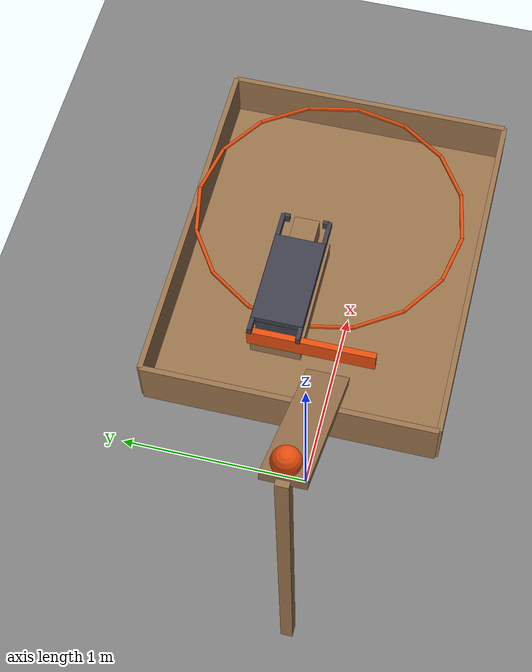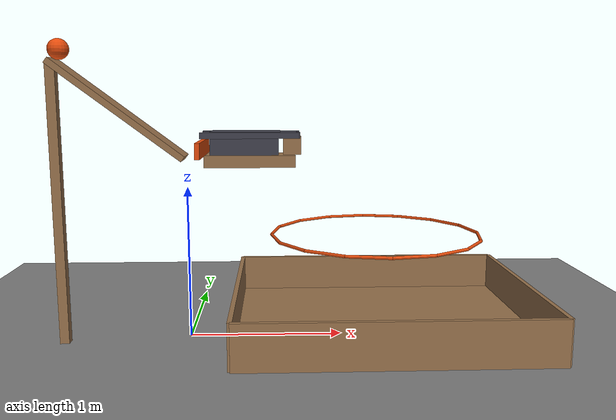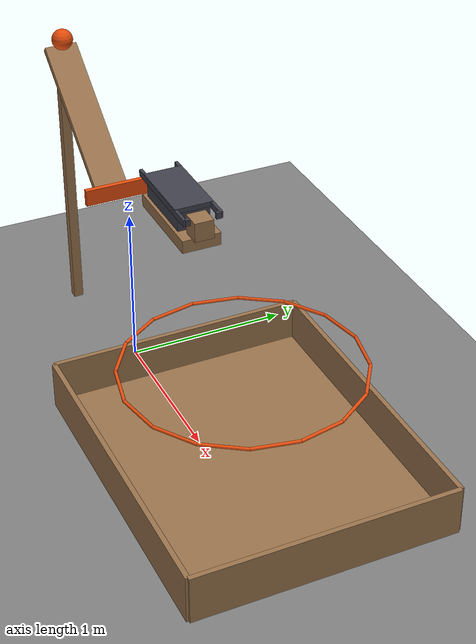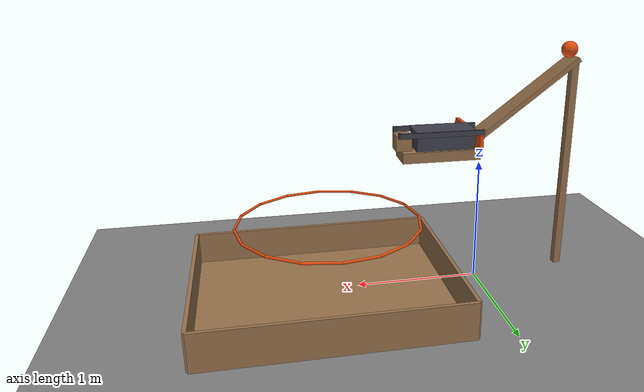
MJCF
<mujoco model="ramp_paddle_slider_drop">
  <compiler angle="radian"/>
  <option timestep="0.002"/>
  <worldbody>
    <geom name="floor" type="plane" size="6 6 0.1" friction="0.8 0.005 0.002"/>
    <body name="ramp">
      <geom name="ramp_deck" type="box" pos="-0.4 -0.1 1.5" size="0.5 0.1 0.02" euler="0 0.643501 0" friction="0.7 0.001 0.0005" rgba="0.6 0.45 0.3 1"/>
      <geom name="ramp_leg" type="box" pos="-0.8 -0.1 0.9" size="0.03 0.03 0.9" friction="0.7 0.001 0.0005" rgba="0.6 0.45 0.3 1"/>
    </body>
    <body name="ball" pos="-0.749 -0.1 1.868">
      <freejoint/>
      <geom name="ball" type="sphere" pos="0 0 0" size="0.065" mass="0.65" condim="6" friction="0.7 0.001 0.0005" solref="0.01 1" rgba="0.9 0.3 0.05 1"/>
    </body>
    <body name="ledge">
      <geom name="ledge" type="box" pos="0.4 0.17 1.16" size="0.3 0.12 0.04" friction="0.08 0.001 0.001" rgba="0.6 0.45 0.3 1"/>
    </body>
    <body name="paddle" pos="0.1 -0.3 1.255">
      <joint name="paddle_hinge" type="hinge" pos="0 0 0" axis="0 0 1" limited="true" range="-1.22173 0" damping="0.03"/>
      <geom name="paddle" type="box" pos="0 0.3 0" size="0.015 0.3 0.05" mass="0.18" friction="0.15 0.005 0.0001" solref="0.01 1" rgba="0.9 0.3 0.05 1"/>
    </body>
    <body name="slider right guide">
      <geom name="slider right guide" type="box" pos="0.4 0.058 1.33" size="0.325 0.01 0.02" friction="0.05 0.005 0.0001" rgba="0.25 0.25 0.3 1"/>
    </body>
    <body name="slider left guide">
      <geom name="slider left guide" type="box" pos="0.4 0.282 1.33" size="0.325 0.01 0.02" friction="0.05 0.005 0.0001" rgba="0.25 0.25 0.3 1"/>
    </body>
    <body name="slider keeper">
      <geom name="slider keeper" type="box" pos="0.37 0.17 1.338" size="0.23 0.12 0.015" friction="0.05 0.005 0.0001" rgba="0.25 0.25 0.3 1"/>
    </body>
    <body name="slider right stop">
      <geom name="slider right stop" type="box" pos="0.72 0.075 1.33" size="0.01 0.015 0.02" solref="0.01 1" rgba="0.25 0.25 0.3 1"/>
    </body>
    <body name="slider left stop">
      <geom name="slider left stop" type="box" pos="0.72 0.265 1.33" size="0.01 0.015 0.02" solref="0.01 1" rgba="0.25 0.25 0.3 1"/>
    </body>
    <body name="slider" pos="0.365 0.17 1.26">
      <freejoint/>
      <geom name="slider" type="box" pos="0 0 0" size="0.225 0.1 0.06" mass="0.35" friction="0.08 0.001 0.001" solref="0.01 1" rgba="0.25 0.25 0.3 1"/>
    </body>
    <body name="block" pos="0.68 0.17 1.26">
      <freejoint/>
      <geom name="block" type="box" pos="0 0 0" size="0.06 0.06 0.06" mass="0.15" friction="0.08 0.001 0.001" solref="0.01 1" rgba="0.6 0.45 0.3 1"/>
    </body>
    <body name="hoop">
      <geom name="hoop_00" type="capsule" size="0.01" fromto="1.96 0.17 0.65 1.90595 0.441705 0.65" rgba="0.9 0.3 0.05 1"/>
      <geom name="hoop_01" type="capsule" size="0.01" fromto="1.90595 0.441705 0.65 1.75205 0.672046 0.65" rgba="0.9 0.3 0.05 1"/>
      <geom name="hoop_02" type="capsule" size="0.01" fromto="1.75205 0.672046 0.65 1.52171 0.825954 0.65" rgba="0.9 0.3 0.05 1"/>
      <geom name="hoop_03" type="capsule" size="0.01" fromto="1.52171 0.825954 0.65 1.25 0.88 0.65" rgba="0.9 0.3 0.05 1"/>
      <geom name="hoop_04" type="capsule" size="0.01" fromto="1.25 0.88 0.65 0.978295 0.825954 0.65" rgba="0.9 0.3 0.05 1"/>
      <geom name="hoop_05" type="capsule" size="0.01" fromto="0.978295 0.825954 0.65 0.747954 0.672046 0.65" rgba="0.9 0.3 0.05 1"/>
      <geom name="hoop_06" type="capsule" size="0.01" fromto="0.747954 0.672046 0.65 0.594046 0.441705 0.65" rgba="0.9 0.3 0.05 1"/>
      <geom name="hoop_07" type="capsule" size="0.01" fromto="0.594046 0.441705 0.65 0.54 0.17 0.65" rgba="0.9 0.3 0.05 1"/>
      <geom name="hoop_08" type="capsule" size="0.01" fromto="0.54 0.17 0.65 0.594046 -0.101705 0.65" rgba="0.9 0.3 0.05 1"/>
      <geom name="hoop_09" type="capsule" size="0.01" fromto="0.594046 -0.101705 0.65 0.747954 -0.332046 0.65" rgba="0.9 0.3 0.05 1"/>
      <geom name="hoop_10" type="capsule" size="0.01" fromto="0.747954 -0.332046 0.65 0.978295 -0.485954 0.65" rgba="0.9 0.3 0.05 1"/>
      <geom name="hoop_11" type="capsule" size="0.01" fromto="0.978295 -0.485954 0.65 1.25 -0.54 0.65" rgba="0.9 0.3 0.05 1"/>
      <geom name="hoop_12" type="capsule" size="0.01" fromto="1.25 -0.54 0.65 1.52171 -0.485954 0.65" rgba="0.9 0.3 0.05 1"/>
      <geom name="hoop_13" type="capsule" size="0.01" fromto="1.52171 -0.485954 0.65 1.75205 -0.332046 0.65" rgba="0.9 0.3 0.05 1"/>
      <geom name="hoop_14" type="capsule" size="0.01" fromto="1.75205 -0.332046 0.65 1.90595 -0.101705 0.65" rgba="0.9 0.3 0.05 1"/>
      <geom name="hoop_15" type="capsule" size="0.01" fromto="1.90595 -0.101705 0.65 1.96 0.17 0.65" rgba="0.9 0.3 0.05 1"/>
    </body>
    <body name="box">
      <geom name="box_base" type="box" pos="1.3 0.17 0.02" size="1 0.8 0.02" friction="0.9 0.02 0.01" solref="0.01 1" rgba="0.6 0.45 0.3 1"/>
      <geom name="box_near_wall" type="box" pos="0.3 0.17 0.15" size="0.015 0.8 0.15" friction="0.9 0.02 0.01" solref="0.01 1" rgba="0.6 0.45 0.3 1"/>
      <geom name="box_far_wall" type="box" pos="2.3 0.17 0.15" size="0.015 0.8 0.15" friction="0.9 0.02 0.01" solref="0.01 1" rgba="0.6 0.45 0.3 1"/>
      <geom name="box_left_wall" type="box" pos="1.3 0.97 0.15" size="1 0.015 0.15" friction="0.9 0.02 0.01" solref="0.01 1" rgba="0.6 0.45 0.3 1"/>
      <geom name="box_right_wall" type="box" pos="1.3 -0.63 0.15" size="1 0.015 0.15" friction="0.9 0.02 0.01" solref="0.01 1" rgba="0.6 0.45 0.3 1"/>
    </body>
  </worldbody>
  <keyframe>
    <key name="start" qpos="-0.749 -0.1 1.868 1 0 0 0 0 0.365 0.17 1.26 1 0 0 0 0.68 0.17 1.26 1 0 0 0" qvel="0 0 0 0 0 0 0 0 0 0 0 0 0 0 0 0 0 0 0"/>
  </keyframe>
</mujoco>
